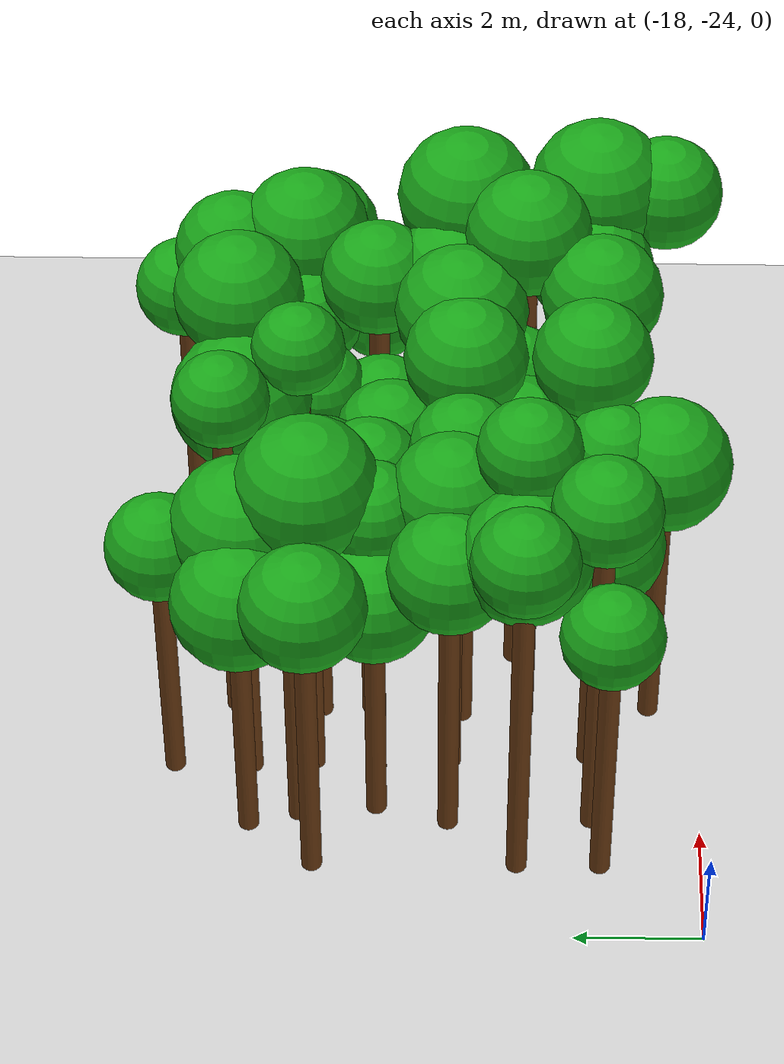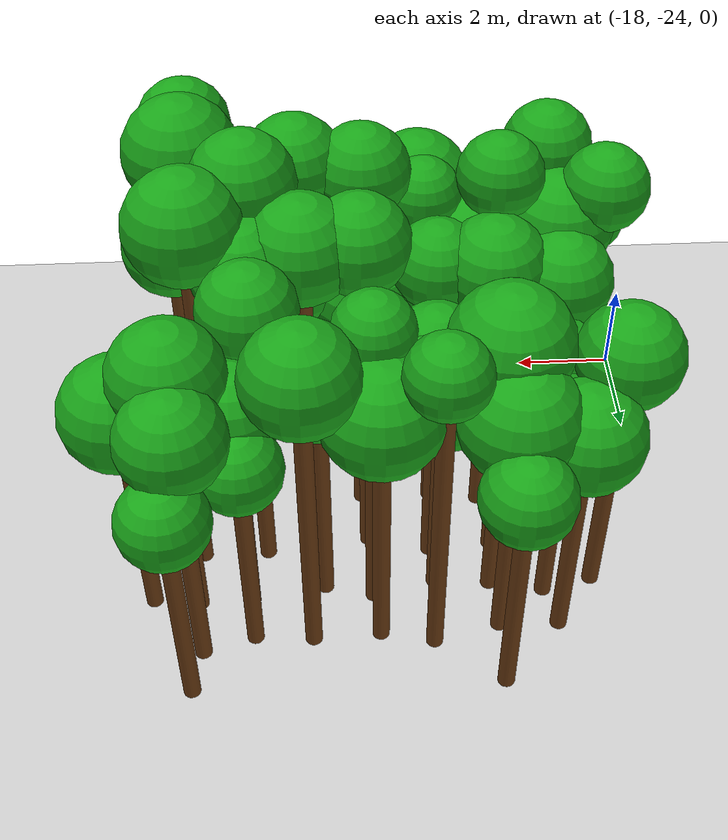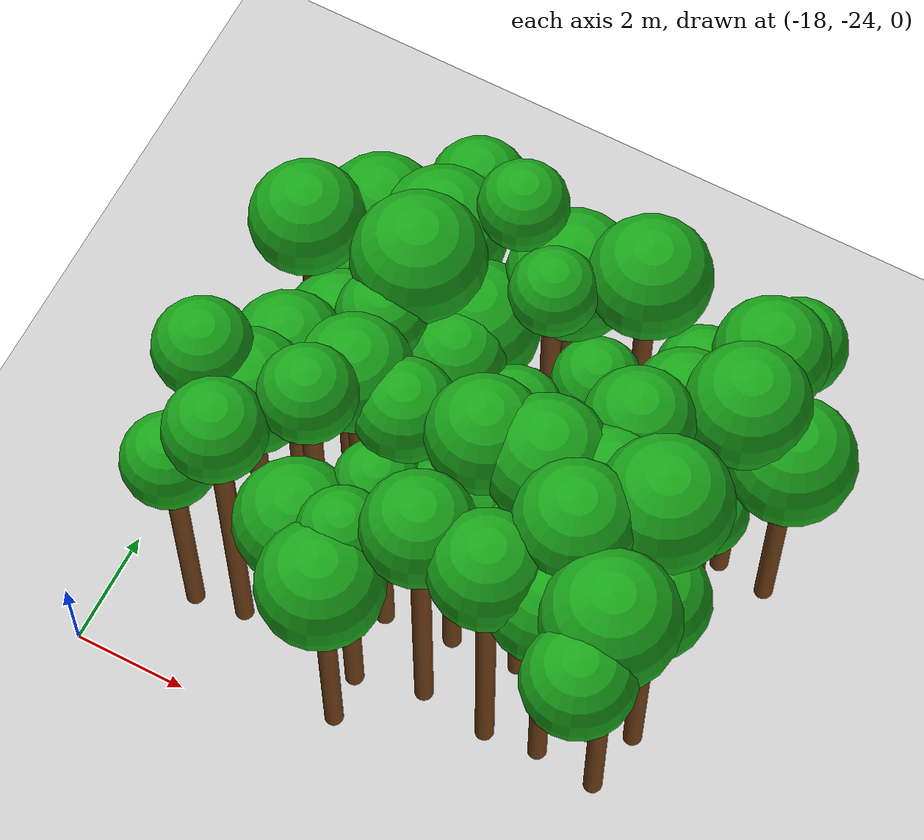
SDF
<sdf version="1.6">
 <world name="forest_world">
  <include><uri>model://sun</uri></include>
  <include><uri>model://ground_plane</uri></include>
  <model name="tree_667_trunk">
   <static>true</static>
   <pose>-16.63 -22.43 2.53 0 0 0</pose>
   <link name="link">
    <collision name="collision">
     <geometry><cylinder><radius>0.16</radius><length>5.06</length></cylinder></geometry>
    </collision>
    <visual name="visual">
     <geometry><cylinder><radius>0.16</radius><length>5.06</length></cylinder></geometry>
     <material><ambient>0.35 0.20 0.05 1</ambient><diffuse>0.45 0.25 0.08 1</diffuse></material>
    </visual>
   </link>
  </model>
  <model name="tree_667_leaf">
   <static>true</static>
   <pose>-16.63 -22.43 5.53 0 0 0</pose>
   <link name="link">
    <collision name="collision"><geometry><sphere><radius>0.78</radius></sphere></geometry></collision>
    <visual name="visual">
     <geometry><sphere><radius>0.78</radius></sphere></geometry>
     <material><ambient>0.05 0.45 0.05 1</ambient><diffuse>0.10 0.65 0.10 1</diffuse></material>
    </visual>
   </link>
  </model>
  <model name="tree_668_trunk">
   <static>true</static>
   <pose>-16.63 -21.14 3.33 0 0 0</pose>
   <link name="link">
    <collision name="collision">
     <geometry><cylinder><radius>0.16</radius><length>6.66</length></cylinder></geometry>
    </collision>
    <visual name="visual">
     <geometry><cylinder><radius>0.16</radius><length>6.66</length></cylinder></geometry>
     <material><ambient>0.35 0.20 0.05 1</ambient><diffuse>0.45 0.25 0.08 1</diffuse></material>
    </visual>
   </link>
  </model>
  <model name="tree_668_leaf">
   <static>true</static>
   <pose>-16.63 -21.14 7.14 0 0 0</pose>
   <link name="link">
    <collision name="collision"><geometry><sphere><radius>0.80</radius></sphere></geometry></collision>
    <visual name="visual">
     <geometry><sphere><radius>0.80</radius></sphere></geometry>
     <material><ambient>0.05 0.45 0.05 1</ambient><diffuse>0.10 0.65 0.10 1</diffuse></material>
    </visual>
   </link>
  </model>
  <model name="tree_671_trunk">
   <static>true</static>
   <pose>-16.64 -17.97 2.77 0 0 0</pose>
   <link name="link">
    <collision name="collision">
     <geometry><cylinder><radius>0.16</radius><length>5.54</length></cylinder></geometry>
    </collision>
    <visual name="visual">
     <geometry><cylinder><radius>0.16</radius><length>5.54</length></cylinder></geometry>
     <material><ambient>0.35 0.20 0.05 1</ambient><diffuse>0.45 0.25 0.08 1</diffuse></material>
    </visual>
   </link>
  </model>
  <model name="tree_671_leaf">
   <static>true</static>
   <pose>-16.64 -17.97 6.10 0 0 0</pose>
   <link name="link">
    <collision name="collision"><geometry><sphere><radius>0.94</radius></sphere></geometry></collision>
    <visual name="visual">
     <geometry><sphere><radius>0.94</radius></sphere></geometry>
     <material><ambient>0.05 0.45 0.05 1</ambient><diffuse>0.10 0.65 0.10 1</diffuse></material>
    </visual>
   </link>
  </model>
  <model name="tree_722_trunk">
   <static>true</static>
   <pose>-15.75 -22.30 3.39 0 0 0</pose>
   <link name="link">
    <collision name="collision">
     <geometry><cylinder><radius>0.16</radius><length>6.77</length></cylinder></geometry>
    </collision>
    <visual name="visual">
     <geometry><cylinder><radius>0.16</radius><length>6.77</length></cylinder></geometry>
     <material><ambient>0.35 0.20 0.05 1</ambient><diffuse>0.45 0.25 0.08 1</diffuse></material>
    </visual>
   </link>
  </model>
  <model name="tree_722_leaf">
   <static>true</static>
   <pose>-15.75 -22.30 7.26 0 0 0</pose>
   <link name="link">
    <collision name="collision"><geometry><sphere><radius>0.82</radius></sphere></geometry></collision>
    <visual name="visual">
     <geometry><sphere><radius>0.82</radius></sphere></geometry>
     <material><ambient>0.05 0.45 0.05 1</ambient><diffuse>0.10 0.65 0.10 1</diffuse></material>
    </visual>
   </link>
  </model>
  <model name="tree_723_trunk">
   <static>true</static>
   <pose>-15.87 -21.16 2.89 0 0 0</pose>
   <link name="link">
    <collision name="collision">
     <geometry><cylinder><radius>0.16</radius><length>5.79</length></cylinder></geometry>
    </collision>
    <visual name="visual">
     <geometry><cylinder><radius>0.16</radius><length>5.79</length></cylinder></geometry>
     <material><ambient>0.35 0.20 0.05 1</ambient><diffuse>0.45 0.25 0.08 1</diffuse></material>
    </visual>
   </link>
  </model>
  <model name="tree_723_leaf">
   <static>true</static>
   <pose>-15.87 -21.16 6.39 0 0 0</pose>
   <link name="link">
    <collision name="collision"><geometry><sphere><radius>1.01</radius></sphere></geometry></collision>
    <visual name="visual">
     <geometry><sphere><radius>1.01</radius></sphere></geometry>
     <material><ambient>0.05 0.45 0.05 1</ambient><diffuse>0.10 0.65 0.10 1</diffuse></material>
    </visual>
   </link>
  </model>
  <model name="tree_724_trunk">
   <static>true</static>
   <pose>-15.81 -20.07 2.71 0 0 0</pose>
   <link name="link">
    <collision name="collision">
     <geometry><cylinder><radius>0.16</radius><length>5.42</length></cylinder></geometry>
    </collision>
    <visual name="visual">
     <geometry><cylinder><radius>0.16</radius><length>5.42</length></cylinder></geometry>
     <material><ambient>0.35 0.20 0.05 1</ambient><diffuse>0.45 0.25 0.08 1</diffuse></material>
    </visual>
   </link>
  </model>
  <model name="tree_724_leaf">
   <static>true</static>
   <pose>-15.81 -20.07 5.98 0 0 0</pose>
   <link name="link">
    <collision name="collision"><geometry><sphere><radius>0.93</radius></sphere></geometry></collision>
    <visual name="visual">
     <geometry><sphere><radius>0.93</radius></sphere></geometry>
     <material><ambient>0.05 0.45 0.05 1</ambient><diffuse>0.10 0.65 0.10 1</diffuse></material>
    </visual>
   </link>
  </model>
  <model name="tree_725_trunk">
   <static>true</static>
   <pose>-15.53 -18.95 2.22 0 0 0</pose>
   <link name="link">
    <collision name="collision">
     <geometry><cylinder><radius>0.16</radius><length>4.43</length></cylinder></geometry>
    </collision>
    <visual name="visual">
     <geometry><cylinder><radius>0.16</radius><length>4.43</length></cylinder></geometry>
     <material><ambient>0.35 0.20 0.05 1</ambient><diffuse>0.45 0.25 0.08 1</diffuse></material>
    </visual>
   </link>
  </model>
  <model name="tree_725_leaf">
   <static>true</static>
   <pose>-15.53 -18.95 5.00 0 0 0</pose>
   <link name="link">
    <collision name="collision"><geometry><sphere><radius>0.95</radius></sphere></geometry></collision>
    <visual name="visual">
     <geometry><sphere><radius>0.95</radius></sphere></geometry>
     <material><ambient>0.05 0.45 0.05 1</ambient><diffuse>0.10 0.65 0.10 1</diffuse></material>
    </visual>
   </link>
  </model>
  <model name="tree_726_trunk">
   <static>true</static>
   <pose>-15.67 -17.74 2.21 0 0 0</pose>
   <link name="link">
    <collision name="collision">
     <geometry><cylinder><radius>0.16</radius><length>4.41</length></cylinder></geometry>
    </collision>
    <visual name="visual">
     <geometry><cylinder><radius>0.16</radius><length>4.41</length></cylinder></geometry>
     <material><ambient>0.35 0.20 0.05 1</ambient><diffuse>0.45 0.25 0.08 1</diffuse></material>
    </visual>
   </link>
  </model>
  <model name="tree_726_leaf">
   <static>true</static>
   <pose>-15.67 -17.74 4.88 0 0 0</pose>
   <link name="link">
    <collision name="collision"><geometry><sphere><radius>0.78</radius></sphere></geometry></collision>
    <visual name="visual">
     <geometry><sphere><radius>0.78</radius></sphere></geometry>
     <material><ambient>0.05 0.45 0.05 1</ambient><diffuse>0.10 0.65 0.10 1</diffuse></material>
    </visual>
   </link>
  </model>
  <model name="tree_727_trunk">
   <static>true</static>
   <pose>-15.87 -16.96 2.33 0 0 0</pose>
   <link name="link">
    <collision name="collision">
     <geometry><cylinder><radius>0.16</radius><length>4.67</length></cylinder></geometry>
    </collision>
    <visual name="visual">
     <geometry><cylinder><radius>0.16</radius><length>4.67</length></cylinder></geometry>
     <material><ambient>0.35 0.20 0.05 1</ambient><diffuse>0.45 0.25 0.08 1</diffuse></material>
    </visual>
   </link>
  </model>
  <model name="tree_727_leaf">
   <static>true</static>
   <pose>-15.87 -16.96 5.27 0 0 0</pose>
   <link name="link">
    <collision name="collision"><geometry><sphere><radius>1.00</radius></sphere></geometry></collision>
    <visual name="visual">
     <geometry><sphere><radius>1.00</radius></sphere></geometry>
     <material><ambient>0.05 0.45 0.05 1</ambient><diffuse>0.10 0.65 0.10 1</diffuse></material>
    </visual>
   </link>
  </model>
  <model name="tree_777_trunk">
   <static>true</static>
   <pose>-14.49 -22.26 2.25 0 0 0</pose>
   <link name="link">
    <collision name="collision">
     <geometry><cylinder><radius>0.16</radius><length>4.50</length></cylinder></geometry>
    </collision>
    <visual name="visual">
     <geometry><cylinder><radius>0.16</radius><length>4.50</length></cylinder></geometry>
     <material><ambient>0.35 0.20 0.05 1</ambient><diffuse>0.45 0.25 0.08 1</diffuse></material>
    </visual>
   </link>
  </model>
  <model name="tree_777_leaf">
   <static>true</static>
   <pose>-14.49 -22.26 5.11 0 0 0</pose>
   <link name="link">
    <collision name="collision"><geometry><sphere><radius>1.02</radius></sphere></geometry></collision>
    <visual name="visual">
     <geometry><sphere><radius>1.02</radius></sphere></geometry>
     <material><ambient>0.05 0.45 0.05 1</ambient><diffuse>0.10 0.65 0.10 1</diffuse></material>
    </visual>
   </link>
  </model>
  <model name="tree_778_trunk">
   <static>true</static>
   <pose>-14.77 -21.20 3.49 0 0 0</pose>
   <link name="link">
    <collision name="collision">
     <geometry><cylinder><radius>0.16</radius><length>6.97</length></cylinder></geometry>
    </collision>
    <visual name="visual">
     <geometry><cylinder><radius>0.16</radius><length>6.97</length></cylinder></geometry>
     <material><ambient>0.35 0.20 0.05 1</ambient><diffuse>0.45 0.25 0.08 1</diffuse></material>
    </visual>
   </link>
  </model>
  <model name="tree_778_leaf">
   <static>true</static>
   <pose>-14.77 -21.20 7.44 0 0 0</pose>
   <link name="link">
    <collision name="collision"><geometry><sphere><radius>0.78</radius></sphere></geometry></collision>
    <visual name="visual">
     <geometry><sphere><radius>0.78</radius></sphere></geometry>
     <material><ambient>0.05 0.45 0.05 1</ambient><diffuse>0.10 0.65 0.10 1</diffuse></material>
    </visual>
   </link>
  </model>
  <model name="tree_779_trunk">
   <static>true</static>
   <pose>-14.62 -20.10 2.87 0 0 0</pose>
   <link name="link">
    <collision name="collision">
     <geometry><cylinder><radius>0.16</radius><length>5.73</length></cylinder></geometry>
    </collision>
    <visual name="visual">
     <geometry><cylinder><radius>0.16</radius><length>5.73</length></cylinder></geometry>
     <material><ambient>0.35 0.20 0.05 1</ambient><diffuse>0.45 0.25 0.08 1</diffuse></material>
    </visual>
   </link>
  </model>
  <model name="tree_779_leaf">
   <static>true</static>
   <pose>-14.62 -20.10 6.31 0 0 0</pose>
   <link name="link">
    <collision name="collision"><geometry><sphere><radius>0.95</radius></sphere></geometry></collision>
    <visual name="visual">
     <geometry><sphere><radius>0.95</radius></sphere></geometry>
     <material><ambient>0.05 0.45 0.05 1</ambient><diffuse>0.10 0.65 0.10 1</diffuse></material>
    </visual>
   </link>
  </model>
  <model name="tree_780_trunk">
   <static>true</static>
   <pose>-14.75 -18.93 2.80 0 0 0</pose>
   <link name="link">
    <collision name="collision">
     <geometry><cylinder><radius>0.16</radius><length>5.60</length></cylinder></geometry>
    </collision>
    <visual name="visual">
     <geometry><cylinder><radius>0.16</radius><length>5.60</length></cylinder></geometry>
     <material><ambient>0.35 0.20 0.05 1</ambient><diffuse>0.45 0.25 0.08 1</diffuse></material>
    </visual>
   </link>
  </model>
  <model name="tree_780_leaf">
   <static>true</static>
   <pose>-14.75 -18.93 6.07 0 0 0</pose>
   <link name="link">
    <collision name="collision"><geometry><sphere><radius>0.77</radius></sphere></geometry></collision>
    <visual name="visual">
     <geometry><sphere><radius>0.77</radius></sphere></geometry>
     <material><ambient>0.05 0.45 0.05 1</ambient><diffuse>0.10 0.65 0.10 1</diffuse></material>
    </visual>
   </link>
  </model>
  <model name="tree_781_trunk">
   <static>true</static>
   <pose>-14.64 -17.96 2.90 0 0 0</pose>
   <link name="link">
    <collision name="collision">
     <geometry><cylinder><radius>0.16</radius><length>5.81</length></cylinder></geometry>
    </collision>
    <visual name="visual">
     <geometry><cylinder><radius>0.16</radius><length>5.81</length></cylinder></geometry>
     <material><ambient>0.35 0.20 0.05 1</ambient><diffuse>0.45 0.25 0.08 1</diffuse></material>
    </visual>
   </link>
  </model>
  <model name="tree_781_leaf">
   <static>true</static>
   <pose>-14.64 -17.96 6.46 0 0 0</pose>
   <link name="link">
    <collision name="collision"><geometry><sphere><radius>1.09</radius></sphere></geometry></collision>
    <visual name="visual">
     <geometry><sphere><radius>1.09</radius></sphere></geometry>
     <material><ambient>0.05 0.45 0.05 1</ambient><diffuse>0.10 0.65 0.10 1</diffuse></material>
    </visual>
   </link>
  </model>
  <model name="tree_782_trunk">
   <static>true</static>
   <pose>-14.73 -16.98 2.53 0 0 0</pose>
   <link name="link">
    <collision name="collision">
     <geometry><cylinder><radius>0.16</radius><length>5.06</length></cylinder></geometry>
    </collision>
    <visual name="visual">
     <geometry><cylinder><radius>0.16</radius><length>5.06</length></cylinder></geometry>
     <material><ambient>0.35 0.20 0.05 1</ambient><diffuse>0.45 0.25 0.08 1</diffuse></material>
    </visual>
   </link>
  </model>
  <model name="tree_782_leaf">
   <static>true</static>
   <pose>-14.73 -16.98 5.70 0 0 0</pose>
   <link name="link">
    <collision name="collision"><geometry><sphere><radius>1.07</radius></sphere></geometry></collision>
    <visual name="visual">
     <geometry><sphere><radius>1.07</radius></sphere></geometry>
     <material><ambient>0.05 0.45 0.05 1</ambient><diffuse>0.10 0.65 0.10 1</diffuse></material>
    </visual>
   </link>
  </model>
  <model name="tree_783_trunk">
   <static>true</static>
   <pose>-14.73 -15.75 2.36 0 0 0</pose>
   <link name="link">
    <collision name="collision">
     <geometry><cylinder><radius>0.16</radius><length>4.72</length></cylinder></geometry>
    </collision>
    <visual name="visual">
     <geometry><cylinder><radius>0.16</radius><length>4.72</length></cylinder></geometry>
     <material><ambient>0.35 0.20 0.05 1</ambient><diffuse>0.45 0.25 0.08 1</diffuse></material>
    </visual>
   </link>
  </model>
  <model name="tree_783_leaf">
   <static>true</static>
   <pose>-14.73 -15.75 5.21 0 0 0</pose>
   <link name="link">
    <collision name="collision"><geometry><sphere><radius>0.82</radius></sphere></geometry></collision>
    <visual name="visual">
     <geometry><sphere><radius>0.82</radius></sphere></geometry>
     <material><ambient>0.05 0.45 0.05 1</ambient><diffuse>0.10 0.65 0.10 1</diffuse></material>
    </visual>
   </link>
  </model>
  <model name="tree_831_trunk">
   <static>true</static>
   <pose>-13.50 -23.25 2.60 0 0 0</pose>
   <link name="link">
    <collision name="collision">
     <geometry><cylinder><radius>0.16</radius><length>5.20</length></cylinder></geometry>
    </collision>
    <visual name="visual">
     <geometry><cylinder><radius>0.16</radius><length>5.20</length></cylinder></geometry>
     <material><ambient>0.35 0.20 0.05 1</ambient><diffuse>0.45 0.25 0.08 1</diffuse></material>
    </visual>
   </link>
  </model>
  <model name="tree_831_leaf">
   <static>true</static>
   <pose>-13.50 -23.25 5.81 0 0 0</pose>
   <link name="link">
    <collision name="collision"><geometry><sphere><radius>1.02</radius></sphere></geometry></collision>
    <visual name="visual">
     <geometry><sphere><radius>1.02</radius></sphere></geometry>
     <material><ambient>0.05 0.45 0.05 1</ambient><diffuse>0.10 0.65 0.10 1</diffuse></material>
    </visual>
   </link>
  </model>
  <model name="tree_832_trunk">
   <static>true</static>
   <pose>-13.54 -22.46 2.84 0 0 0</pose>
   <link name="link">
    <collision name="collision">
     <geometry><cylinder><radius>0.16</radius><length>5.68</length></cylinder></geometry>
    </collision>
    <visual name="visual">
     <geometry><cylinder><radius>0.16</radius><length>5.68</length></cylinder></geometry>
     <material><ambient>0.35 0.20 0.05 1</ambient><diffuse>0.45 0.25 0.08 1</diffuse></material>
    </visual>
   </link>
  </model>
  <model name="tree_832_leaf">
   <static>true</static>
   <pose>-13.54 -22.46 6.11 0 0 0</pose>
   <link name="link">
    <collision name="collision"><geometry><sphere><radius>0.73</radius></sphere></geometry></collision>
    <visual name="visual">
     <geometry><sphere><radius>0.73</radius></sphere></geometry>
     <material><ambient>0.05 0.45 0.05 1</ambient><diffuse>0.10 0.65 0.10 1</diffuse></material>
    </visual>
   </link>
  </model>
  <model name="tree_833_trunk">
   <static>true</static>
   <pose>-13.61 -21.25 2.51 0 0 0</pose>
   <link name="link">
    <collision name="collision">
     <geometry><cylinder><radius>0.16</radius><length>5.02</length></cylinder></geometry>
    </collision>
    <visual name="visual">
     <geometry><cylinder><radius>0.16</radius><length>5.02</length></cylinder></geometry>
     <material><ambient>0.35 0.20 0.05 1</ambient><diffuse>0.45 0.25 0.08 1</diffuse></material>
    </visual>
   </link>
  </model>
  <model name="tree_833_leaf">
   <static>true</static>
   <pose>-13.61 -21.25 5.45 0 0 0</pose>
   <link name="link">
    <collision name="collision"><geometry><sphere><radius>0.72</radius></sphere></geometry></collision>
    <visual name="visual">
     <geometry><sphere><radius>0.72</radius></sphere></geometry>
     <material><ambient>0.05 0.45 0.05 1</ambient><diffuse>0.10 0.65 0.10 1</diffuse></material>
    </visual>
   </link>
  </model>
  <model name="tree_834_trunk">
   <static>true</static>
   <pose>-13.64 -20.27 2.87 0 0 0</pose>
   <link name="link">
    <collision name="collision">
     <geometry><cylinder><radius>0.16</radius><length>5.75</length></cylinder></geometry>
    </collision>
    <visual name="visual">
     <geometry><cylinder><radius>0.16</radius><length>5.75</length></cylinder></geometry>
     <material><ambient>0.35 0.20 0.05 1</ambient><diffuse>0.45 0.25 0.08 1</diffuse></material>
    </visual>
   </link>
  </model>
  <model name="tree_834_leaf">
   <static>true</static>
   <pose>-13.64 -20.27 6.25 0 0 0</pose>
   <link name="link">
    <collision name="collision"><geometry><sphere><radius>0.84</radius></sphere></geometry></collision>
    <visual name="visual">
     <geometry><sphere><radius>0.84</radius></sphere></geometry>
     <material><ambient>0.05 0.45 0.05 1</ambient><diffuse>0.10 0.65 0.10 1</diffuse></material>
    </visual>
   </link>
  </model>
  <model name="tree_835_trunk">
   <static>true</static>
   <pose>-13.53 -18.84 2.55 0 0 0</pose>
   <link name="link">
    <collision name="collision">
     <geometry><cylinder><radius>0.16</radius><length>5.10</length></cylinder></geometry>
    </collision>
    <visual name="visual">
     <geometry><cylinder><radius>0.16</radius><length>5.10</length></cylinder></geometry>
     <material><ambient>0.35 0.20 0.05 1</ambient><diffuse>0.45 0.25 0.08 1</diffuse></material>
    </visual>
   </link>
  </model>
  <model name="tree_835_leaf">
   <static>true</static>
   <pose>-13.53 -18.84 5.60 0 0 0</pose>
   <link name="link">
    <collision name="collision"><geometry><sphere><radius>0.83</radius></sphere></geometry></collision>
    <visual name="visual">
     <geometry><sphere><radius>0.83</radius></sphere></geometry>
     <material><ambient>0.05 0.45 0.05 1</ambient><diffuse>0.10 0.65 0.10 1</diffuse></material>
    </visual>
   </link>
  </model>
  <model name="tree_836_trunk">
   <static>true</static>
   <pose>-13.58 -18.05 2.36 0 0 0</pose>
   <link name="link">
    <collision name="collision">
     <geometry><cylinder><radius>0.16</radius><length>4.72</length></cylinder></geometry>
    </collision>
    <visual name="visual">
     <geometry><cylinder><radius>0.16</radius><length>4.72</length></cylinder></geometry>
     <material><ambient>0.35 0.20 0.05 1</ambient><diffuse>0.45 0.25 0.08 1</diffuse></material>
    </visual>
   </link>
  </model>
  <model name="tree_836_leaf">
   <static>true</static>
   <pose>-13.58 -18.05 5.36 0 0 0</pose>
   <link name="link">
    <collision name="collision"><geometry><sphere><radius>1.06</radius></sphere></geometry></collision>
    <visual name="visual">
     <geometry><sphere><radius>1.06</radius></sphere></geometry>
     <material><ambient>0.05 0.45 0.05 1</ambient><diffuse>0.10 0.65 0.10 1</diffuse></material>
    </visual>
   </link>
  </model>
  <model name="tree_837_trunk">
   <static>true</static>
   <pose>-13.48 -16.67 3.32 0 0 0</pose>
   <link name="link">
    <collision name="collision">
     <geometry><cylinder><radius>0.16</radius><length>6.64</length></cylinder></geometry>
    </collision>
    <visual name="visual">
     <geometry><cylinder><radius>0.16</radius><length>6.64</length></cylinder></geometry>
     <material><ambient>0.35 0.20 0.05 1</ambient><diffuse>0.45 0.25 0.08 1</diffuse></material>
    </visual>
   </link>
  </model>
  <model name="tree_837_leaf">
   <static>true</static>
   <pose>-13.48 -16.67 7.08 0 0 0</pose>
   <link name="link">
    <collision name="collision"><geometry><sphere><radius>0.73</radius></sphere></geometry></collision>
    <visual name="visual">
     <geometry><sphere><radius>0.73</radius></sphere></geometry>
     <material><ambient>0.05 0.45 0.05 1</ambient><diffuse>0.10 0.65 0.10 1</diffuse></material>
    </visual>
   </link>
  </model>
  <model name="tree_887_trunk">
   <static>true</static>
   <pose>-12.38 -22.16 3.18 0 0 0</pose>
   <link name="link">
    <collision name="collision">
     <geometry><cylinder><radius>0.16</radius><length>6.35</length></cylinder></geometry>
    </collision>
    <visual name="visual">
     <geometry><cylinder><radius>0.16</radius><length>6.35</length></cylinder></geometry>
     <material><ambient>0.35 0.20 0.05 1</ambient><diffuse>0.45 0.25 0.08 1</diffuse></material>
    </visual>
   </link>
  </model>
  <model name="tree_887_leaf">
   <static>true</static>
   <pose>-12.38 -22.16 6.90 0 0 0</pose>
   <link name="link">
    <collision name="collision"><geometry><sphere><radius>0.91</radius></sphere></geometry></collision>
    <visual name="visual">
     <geometry><sphere><radius>0.91</radius></sphere></geometry>
     <material><ambient>0.05 0.45 0.05 1</ambient><diffuse>0.10 0.65 0.10 1</diffuse></material>
    </visual>
   </link>
  </model>
  <model name="tree_888_trunk">
   <static>true</static>
   <pose>-12.41 -21.10 2.17 0 0 0</pose>
   <link name="link">
    <collision name="collision">
     <geometry><cylinder><radius>0.16</radius><length>4.35</length></cylinder></geometry>
    </collision>
    <visual name="visual">
     <geometry><cylinder><radius>0.16</radius><length>4.35</length></cylinder></geometry>
     <material><ambient>0.35 0.20 0.05 1</ambient><diffuse>0.45 0.25 0.08 1</diffuse></material>
    </visual>
   </link>
  </model>
  <model name="tree_888_leaf">
   <static>true</static>
   <pose>-12.41 -21.10 5.00 0 0 0</pose>
   <link name="link">
    <collision name="collision"><geometry><sphere><radius>1.10</radius></sphere></geometry></collision>
    <visual name="visual">
     <geometry><sphere><radius>1.10</radius></sphere></geometry>
     <material><ambient>0.05 0.45 0.05 1</ambient><diffuse>0.10 0.65 0.10 1</diffuse></material>
    </visual>
   </link>
  </model>
  <model name="tree_889_trunk">
   <static>true</static>
   <pose>-12.26 -20.27 3.10 0 0 0</pose>
   <link name="link">
    <collision name="collision">
     <geometry><cylinder><radius>0.16</radius><length>6.20</length></cylinder></geometry>
    </collision>
    <visual name="visual">
     <geometry><cylinder><radius>0.16</radius><length>6.20</length></cylinder></geometry>
     <material><ambient>0.35 0.20 0.05 1</ambient><diffuse>0.45 0.25 0.08 1</diffuse></material>
    </visual>
   </link>
  </model>
  <model name="tree_889_leaf">
   <static>true</static>
   <pose>-12.26 -20.27 6.76 0 0 0</pose>
   <link name="link">
    <collision name="collision"><geometry><sphere><radius>0.94</radius></sphere></geometry></collision>
    <visual name="visual">
     <geometry><sphere><radius>0.94</radius></sphere></geometry>
     <material><ambient>0.05 0.45 0.05 1</ambient><diffuse>0.10 0.65 0.10 1</diffuse></material>
    </visual>
   </link>
  </model>
  <model name="tree_890_trunk">
   <static>true</static>
   <pose>-12.34 -19.15 2.31 0 0 0</pose>
   <link name="link">
    <collision name="collision">
     <geometry><cylinder><radius>0.16</radius><length>4.62</length></cylinder></geometry>
    </collision>
    <visual name="visual">
     <geometry><cylinder><radius>0.16</radius><length>4.62</length></cylinder></geometry>
     <material><ambient>0.35 0.20 0.05 1</ambient><diffuse>0.45 0.25 0.08 1</diffuse></material>
    </visual>
   </link>
  </model>
  <model name="tree_890_leaf">
   <static>true</static>
   <pose>-12.34 -19.15 5.14 0 0 0</pose>
   <link name="link">
    <collision name="collision"><geometry><sphere><radius>0.86</radius></sphere></geometry></collision>
    <visual name="visual">
     <geometry><sphere><radius>0.86</radius></sphere></geometry>
     <material><ambient>0.05 0.45 0.05 1</ambient><diffuse>0.10 0.65 0.10 1</diffuse></material>
    </visual>
   </link>
  </model>
  <model name="tree_891_trunk">
   <static>true</static>
   <pose>-12.39 -17.77 3.31 0 0 0</pose>
   <link name="link">
    <collision name="collision">
     <geometry><cylinder><radius>0.16</radius><length>6.61</length></cylinder></geometry>
    </collision>
    <visual name="visual">
     <geometry><cylinder><radius>0.16</radius><length>6.61</length></cylinder></geometry>
     <material><ambient>0.35 0.20 0.05 1</ambient><diffuse>0.45 0.25 0.08 1</diffuse></material>
    </visual>
   </link>
  </model>
  <model name="tree_891_leaf">
   <static>true</static>
   <pose>-12.39 -17.77 7.04 0 0 0</pose>
   <link name="link">
    <collision name="collision"><geometry><sphere><radius>0.71</radius></sphere></geometry></collision>
    <visual name="visual">
     <geometry><sphere><radius>0.71</radius></sphere></geometry>
     <material><ambient>0.05 0.45 0.05 1</ambient><diffuse>0.10 0.65 0.10 1</diffuse></material>
    </visual>
   </link>
  </model>
  <model name="tree_892_trunk">
   <static>true</static>
   <pose>-12.48 -16.89 2.70 0 0 0</pose>
   <link name="link">
    <collision name="collision">
     <geometry><cylinder><radius>0.16</radius><length>5.40</length></cylinder></geometry>
    </collision>
    <visual name="visual">
     <geometry><cylinder><radius>0.16</radius><length>5.40</length></cylinder></geometry>
     <material><ambient>0.35 0.20 0.05 1</ambient><diffuse>0.45 0.25 0.08 1</diffuse></material>
    </visual>
   </link>
  </model>
  <model name="tree_892_leaf">
   <static>true</static>
   <pose>-12.48 -16.89 6.04 0 0 0</pose>
   <link name="link">
    <collision name="collision"><geometry><sphere><radius>1.07</radius></sphere></geometry></collision>
    <visual name="visual">
     <geometry><sphere><radius>1.07</radius></sphere></geometry>
     <material><ambient>0.05 0.45 0.05 1</ambient><diffuse>0.10 0.65 0.10 1</diffuse></material>
    </visual>
   </link>
  </model>
  <model name="tree_942_trunk">
   <static>true</static>
   <pose>-11.16 -22.31 3.22 0 0 0</pose>
   <link name="link">
    <collision name="collision">
     <geometry><cylinder><radius>0.16</radius><length>6.45</length></cylinder></geometry>
    </collision>
    <visual name="visual">
     <geometry><cylinder><radius>0.16</radius><length>6.45</length></cylinder></geometry>
     <material><ambient>0.35 0.20 0.05 1</ambient><diffuse>0.45 0.25 0.08 1</diffuse></material>
    </visual>
   </link>
  </model>
  <model name="tree_942_leaf">
   <static>true</static>
   <pose>-11.16 -22.31 7.01 0 0 0</pose>
   <link name="link">
    <collision name="collision"><geometry><sphere><radius>0.93</radius></sphere></geometry></collision>
    <visual name="visual">
     <geometry><sphere><radius>0.93</radius></sphere></geometry>
     <material><ambient>0.05 0.45 0.05 1</ambient><diffuse>0.10 0.65 0.10 1</diffuse></material>
    </visual>
   </link>
  </model>
  <model name="tree_943_trunk">
   <static>true</static>
   <pose>-11.22 -21.02 2.44 0 0 0</pose>
   <link name="link">
    <collision name="collision">
     <geometry><cylinder><radius>0.16</radius><length>4.88</length></cylinder></geometry>
    </collision>
    <visual name="visual">
     <geometry><cylinder><radius>0.16</radius><length>4.88</length></cylinder></geometry>
     <material><ambient>0.35 0.20 0.05 1</ambient><diffuse>0.45 0.25 0.08 1</diffuse></material>
    </visual>
   </link>
  </model>
  <model name="tree_943_leaf">
   <static>true</static>
   <pose>-11.22 -21.02 5.34 0 0 0</pose>
   <link name="link">
    <collision name="collision"><geometry><sphere><radius>0.77</radius></sphere></geometry></collision>
    <visual name="visual">
     <geometry><sphere><radius>0.77</radius></sphere></geometry>
     <material><ambient>0.05 0.45 0.05 1</ambient><diffuse>0.10 0.65 0.10 1</diffuse></material>
    </visual>
   </link>
  </model>
  <model name="tree_944_trunk">
   <static>true</static>
   <pose>-11.26 -20.20 3.06 0 0 0</pose>
   <link name="link">
    <collision name="collision">
     <geometry><cylinder><radius>0.16</radius><length>6.13</length></cylinder></geometry>
    </collision>
    <visual name="visual">
     <geometry><cylinder><radius>0.16</radius><length>6.13</length></cylinder></geometry>
     <material><ambient>0.35 0.20 0.05 1</ambient><diffuse>0.45 0.25 0.08 1</diffuse></material>
    </visual>
   </link>
  </model>
  <model name="tree_944_leaf">
   <static>true</static>
   <pose>-11.26 -20.20 6.74 0 0 0</pose>
   <link name="link">
    <collision name="collision"><geometry><sphere><radius>1.02</radius></sphere></geometry></collision>
    <visual name="visual">
     <geometry><sphere><radius>1.02</radius></sphere></geometry>
     <material><ambient>0.05 0.45 0.05 1</ambient><diffuse>0.10 0.65 0.10 1</diffuse></material>
    </visual>
   </link>
  </model>
  <model name="tree_945_trunk">
   <static>true</static>
   <pose>-11.43 -19.01 2.16 0 0 0</pose>
   <link name="link">
    <collision name="collision">
     <geometry><cylinder><radius>0.16</radius><length>4.31</length></cylinder></geometry>
    </collision>
    <visual name="visual">
     <geometry><cylinder><radius>0.16</radius><length>4.31</length></cylinder></geometry>
     <material><ambient>0.35 0.20 0.05 1</ambient><diffuse>0.45 0.25 0.08 1</diffuse></material>
    </visual>
   </link>
  </model>
  <model name="tree_945_leaf">
   <static>true</static>
   <pose>-11.43 -19.01 4.80 0 0 0</pose>
   <link name="link">
    <collision name="collision"><geometry><sphere><radius>0.82</radius></sphere></geometry></collision>
    <visual name="visual">
     <geometry><sphere><radius>0.82</radius></sphere></geometry>
     <material><ambient>0.05 0.45 0.05 1</ambient><diffuse>0.10 0.65 0.10 1</diffuse></material>
    </visual>
   </link>
  </model>
  <model name="tree_946_trunk">
   <static>true</static>
   <pose>-11.46 -18.02 2.40 0 0 0</pose>
   <link name="link">
    <collision name="collision">
     <geometry><cylinder><radius>0.16</radius><length>4.81</length></cylinder></geometry>
    </collision>
    <visual name="visual">
     <geometry><cylinder><radius>0.16</radius><length>4.81</length></cylinder></geometry>
     <material><ambient>0.35 0.20 0.05 1</ambient><diffuse>0.45 0.25 0.08 1</diffuse></material>
    </visual>
   </link>
  </model>
  <model name="tree_946_leaf">
   <static>true</static>
   <pose>-11.46 -18.02 5.24 0 0 0</pose>
   <link name="link">
    <collision name="collision"><geometry><sphere><radius>0.73</radius></sphere></geometry></collision>
    <visual name="visual">
     <geometry><sphere><radius>0.73</radius></sphere></geometry>
     <material><ambient>0.05 0.45 0.05 1</ambient><diffuse>0.10 0.65 0.10 1</diffuse></material>
    </visual>
   </link>
  </model>
  <model name="tree_947_trunk">
   <static>true</static>
   <pose>-11.21 -16.83 3.19 0 0 0</pose>
   <link name="link">
    <collision name="collision">
     <geometry><cylinder><radius>0.16</radius><length>6.38</length></cylinder></geometry>
    </collision>
    <visual name="visual">
     <geometry><cylinder><radius>0.16</radius><length>6.38</length></cylinder></geometry>
     <material><ambient>0.35 0.20 0.05 1</ambient><diffuse>0.45 0.25 0.08 1</diffuse></material>
    </visual>
   </link>
  </model>
  <model name="tree_947_leaf">
   <static>true</static>
   <pose>-11.21 -16.83 6.98 0 0 0</pose>
   <link name="link">
    <collision name="collision"><geometry><sphere><radius>0.99</radius></sphere></geometry></collision>
    <visual name="visual">
     <geometry><sphere><radius>0.99</radius></sphere></geometry>
     <material><ambient>0.05 0.45 0.05 1</ambient><diffuse>0.10 0.65 0.10 1</diffuse></material>
    </visual>
   </link>
  </model>
  <model name="tree_997_trunk">
   <static>true</static>
   <pose>-10.23 -22.20 3.01 0 0 0</pose>
   <link name="link">
    <collision name="collision">
     <geometry><cylinder><radius>0.16</radius><length>6.02</length></cylinder></geometry>
    </collision>
    <visual name="visual">
     <geometry><cylinder><radius>0.16</radius><length>6.02</length></cylinder></geometry>
     <material><ambient>0.35 0.20 0.05 1</ambient><diffuse>0.45 0.25 0.08 1</diffuse></material>
    </visual>
   </link>
  </model>
  <model name="tree_997_leaf">
   <static>true</static>
   <pose>-10.23 -22.20 6.59 0 0 0</pose>
   <link name="link">
    <collision name="collision"><geometry><sphere><radius>0.95</radius></sphere></geometry></collision>
    <visual name="visual">
     <geometry><sphere><radius>0.95</radius></sphere></geometry>
     <material><ambient>0.05 0.45 0.05 1</ambient><diffuse>0.10 0.65 0.10 1</diffuse></material>
    </visual>
   </link>
  </model>
  <model name="tree_998_trunk">
   <static>true</static>
   <pose>-10.28 -21.20 3.43 0 0 0</pose>
   <link name="link">
    <collision name="collision">
     <geometry><cylinder><radius>0.16</radius><length>6.85</length></cylinder></geometry>
    </collision>
    <visual name="visual">
     <geometry><cylinder><radius>0.16</radius><length>6.85</length></cylinder></geometry>
     <material><ambient>0.35 0.20 0.05 1</ambient><diffuse>0.45 0.25 0.08 1</diffuse></material>
    </visual>
   </link>
  </model>
  <model name="tree_998_leaf">
   <static>true</static>
   <pose>-10.28 -21.20 7.43 0 0 0</pose>
   <link name="link">
    <collision name="collision"><geometry><sphere><radius>0.97</radius></sphere></geometry></collision>
    <visual name="visual">
     <geometry><sphere><radius>0.97</radius></sphere></geometry>
     <material><ambient>0.05 0.45 0.05 1</ambient><diffuse>0.10 0.65 0.10 1</diffuse></material>
    </visual>
   </link>
  </model>
  <model name="tree_999_trunk">
   <static>true</static>
   <pose>-10.26 -20.04 2.95 0 0 0</pose>
   <link name="link">
    <collision name="collision">
     <geometry><cylinder><radius>0.16</radius><length>5.90</length></cylinder></geometry>
    </collision>
    <visual name="visual">
     <geometry><cylinder><radius>0.16</radius><length>5.90</length></cylinder></geometry>
     <material><ambient>0.35 0.20 0.05 1</ambient><diffuse>0.45 0.25 0.08 1</diffuse></material>
    </visual>
   </link>
  </model>
  <model name="tree_999_leaf">
   <static>true</static>
   <pose>-10.26 -20.04 6.49 0 0 0</pose>
   <link name="link">
    <collision name="collision"><geometry><sphere><radius>0.98</radius></sphere></geometry></collision>
    <visual name="visual">
     <geometry><sphere><radius>0.98</radius></sphere></geometry>
     <material><ambient>0.05 0.45 0.05 1</ambient><diffuse>0.10 0.65 0.10 1</diffuse></material>
    </visual>
   </link>
  </model>
  <model name="tree_1000_trunk">
   <static>true</static>
   <pose>-10.34 -18.92 2.99 0 0 0</pose>
   <link name="link">
    <collision name="collision">
     <geometry><cylinder><radius>0.16</radius><length>5.99</length></cylinder></geometry>
    </collision>
    <visual name="visual">
     <geometry><cylinder><radius>0.16</radius><length>5.99</length></cylinder></geometry>
     <material><ambient>0.35 0.20 0.05 1</ambient><diffuse>0.45 0.25 0.08 1</diffuse></material>
    </visual>
   </link>
  </model>
  <model name="tree_1000_leaf">
   <static>true</static>
   <pose>-10.34 -18.92 6.52 0 0 0</pose>
   <link name="link">
    <collision name="collision"><geometry><sphere><radius>0.89</radius></sphere></geometry></collision>
    <visual name="visual">
     <geometry><sphere><radius>0.89</radius></sphere></geometry>
     <material><ambient>0.05 0.45 0.05 1</ambient><diffuse>0.10 0.65 0.10 1</diffuse></material>
    </visual>
   </link>
  </model>
  <model name="tree_1001_trunk">
   <static>true</static>
   <pose>-10.04 -17.76 2.41 0 0 0</pose>
   <link name="link">
    <collision name="collision">
     <geometry><cylinder><radius>0.16</radius><length>4.82</length></cylinder></geometry>
    </collision>
    <visual name="visual">
     <geometry><cylinder><radius>0.16</radius><length>4.82</length></cylinder></geometry>
     <material><ambient>0.35 0.20 0.05 1</ambient><diffuse>0.45 0.25 0.08 1</diffuse></material>
    </visual>
   </link>
  </model>
  <model name="tree_1001_leaf">
   <static>true</static>
   <pose>-10.04 -17.76 5.36 0 0 0</pose>
   <link name="link">
    <collision name="collision"><geometry><sphere><radius>0.90</radius></sphere></geometry></collision>
    <visual name="visual">
     <geometry><sphere><radius>0.90</radius></sphere></geometry>
     <material><ambient>0.05 0.45 0.05 1</ambient><diffuse>0.10 0.65 0.10 1</diffuse></material>
    </visual>
   </link>
  </model>
  <model name="tree_1002_trunk">
   <static>true</static>
   <pose>-10.11 -16.92 2.18 0 0 0</pose>
   <link name="link">
    <collision name="collision">
     <geometry><cylinder><radius>0.16</radius><length>4.37</length></cylinder></geometry>
    </collision>
    <visual name="visual">
     <geometry><cylinder><radius>0.16</radius><length>4.37</length></cylinder></geometry>
     <material><ambient>0.35 0.20 0.05 1</ambient><diffuse>0.45 0.25 0.08 1</diffuse></material>
    </visual>
   </link>
  </model>
  <model name="tree_1002_leaf">
   <static>true</static>
   <pose>-10.11 -16.92 4.84 0 0 0</pose>
   <link name="link">
    <collision name="collision"><geometry><sphere><radius>0.79</radius></sphere></geometry></collision>
    <visual name="visual">
     <geometry><sphere><radius>0.79</radius></sphere></geometry>
     <material><ambient>0.05 0.45 0.05 1</ambient><diffuse>0.10 0.65 0.10 1</diffuse></material>
    </visual>
   </link>
  </model>
  <model name="tree_1051_leaf">
   <static>true</static>
   <pose>-9.15 -23.31 7.23 0 0 0</pose>
   <link name="link">
    <collision name="collision"><geometry><sphere><radius>0.88</radius></sphere></geometry></collision>
    <visual name="visual">
     <geometry><sphere><radius>0.88</radius></sphere></geometry>
     <material><ambient>0.05 0.45 0.05 1</ambient><diffuse>0.10 0.65 0.10 1</diffuse></material>
    </visual>
   </link>
  </model>
  <model name="tree_1052_trunk">
   <static>true</static>
   <pose>-9.15 -22.29 3.34 0 0 0</pose>
   <link name="link">
    <collision name="collision">
     <geometry><cylinder><radius>0.16</radius><length>6.69</length></cylinder></geometry>
    </collision>
    <visual name="visual">
     <geometry><cylinder><radius>0.16</radius><length>6.69</length></cylinder></geometry>
     <material><ambient>0.35 0.20 0.05 1</ambient><diffuse>0.45 0.25 0.08 1</diffuse></material>
    </visual>
   </link>
  </model>
  <model name="tree_1052_leaf">
   <static>true</static>
   <pose>-9.15 -22.29 7.33 0 0 0</pose>
   <link name="link">
    <collision name="collision"><geometry><sphere><radius>1.07</radius></sphere></geometry></collision>
    <visual name="visual">
     <geometry><sphere><radius>1.07</radius></sphere></geometry>
     <material><ambient>0.05 0.45 0.05 1</ambient><diffuse>0.10 0.65 0.10 1</diffuse></material>
    </visual>
   </link>
  </model>
  <model name="tree_1053_trunk">
   <static>true</static>
   <pose>-8.94 -21.24 2.74 0 0 0</pose>
   <link name="link">
    <collision name="collision">
     <geometry><cylinder><radius>0.16</radius><length>5.48</length></cylinder></geometry>
    </collision>
    <visual name="visual">
     <geometry><cylinder><radius>0.16</radius><length>5.48</length></cylinder></geometry>
     <material><ambient>0.35 0.20 0.05 1</ambient><diffuse>0.45 0.25 0.08 1</diffuse></material>
    </visual>
   </link>
  </model>
  <model name="tree_1053_leaf">
   <static>true</static>
   <pose>-8.94 -21.24 6.04 0 0 0</pose>
   <link name="link">
    <collision name="collision"><geometry><sphere><radius>0.93</radius></sphere></geometry></collision>
    <visual name="visual">
     <geometry><sphere><radius>0.93</radius></sphere></geometry>
     <material><ambient>0.05 0.45 0.05 1</ambient><diffuse>0.10 0.65 0.10 1</diffuse></material>
    </visual>
   </link>
  </model>
  <model name="tree_1054_trunk">
   <static>true</static>
   <pose>-9.28 -20.25 3.32 0 0 0</pose>
   <link name="link">
    <collision name="collision">
     <geometry><cylinder><radius>0.16</radius><length>6.64</length></cylinder></geometry>
    </collision>
    <visual name="visual">
     <geometry><cylinder><radius>0.16</radius><length>6.64</length></cylinder></geometry>
     <material><ambient>0.35 0.20 0.05 1</ambient><diffuse>0.45 0.25 0.08 1</diffuse></material>
    </visual>
   </link>
  </model>
  <model name="tree_1054_leaf">
   <static>true</static>
   <pose>-9.28 -20.25 7.27 0 0 0</pose>
   <link name="link">
    <collision name="collision"><geometry><sphere><radius>1.06</radius></sphere></geometry></collision>
    <visual name="visual">
     <geometry><sphere><radius>1.06</radius></sphere></geometry>
     <material><ambient>0.05 0.45 0.05 1</ambient><diffuse>0.10 0.65 0.10 1</diffuse></material>
    </visual>
   </link>
  </model>
  <model name="tree_1055_trunk">
   <static>true</static>
   <pose>-9.08 -18.90 2.01 0 0 0</pose>
   <link name="link">
    <collision name="collision">
     <geometry><cylinder><radius>0.16</radius><length>4.02</length></cylinder></geometry>
    </collision>
    <visual name="visual">
     <geometry><cylinder><radius>0.16</radius><length>4.02</length></cylinder></geometry>
     <material><ambient>0.35 0.20 0.05 1</ambient><diffuse>0.45 0.25 0.08 1</diffuse></material>
    </visual>
   </link>
  </model>
  <model name="tree_1055_leaf">
   <static>true</static>
   <pose>-9.08 -18.90 4.45 0 0 0</pose>
   <link name="link">
    <collision name="collision"><geometry><sphere><radius>0.71</radius></sphere></geometry></collision>
    <visual name="visual">
     <geometry><sphere><radius>0.71</radius></sphere></geometry>
     <material><ambient>0.05 0.45 0.05 1</ambient><diffuse>0.10 0.65 0.10 1</diffuse></material>
    </visual>
   </link>
  </model>
  <model name="tree_1056_trunk">
   <static>true</static>
   <pose>-9.04 -17.74 2.81 0 0 0</pose>
   <link name="link">
    <collision name="collision">
     <geometry><cylinder><radius>0.16</radius><length>5.62</length></cylinder></geometry>
    </collision>
    <visual name="visual">
     <geometry><cylinder><radius>0.16</radius><length>5.62</length></cylinder></geometry>
     <material><ambient>0.35 0.20 0.05 1</ambient><diffuse>0.45 0.25 0.08 1</diffuse></material>
    </visual>
   </link>
  </model>
  <model name="tree_1056_leaf">
   <static>true</static>
   <pose>-9.04 -17.74 6.22 0 0 0</pose>
   <link name="link">
    <collision name="collision"><geometry><sphere><radius>1.01</radius></sphere></geometry></collision>
    <visual name="visual">
     <geometry><sphere><radius>1.01</radius></sphere></geometry>
     <material><ambient>0.05 0.45 0.05 1</ambient><diffuse>0.10 0.65 0.10 1</diffuse></material>
    </visual>
   </link>
  </model>
  <model name="tree_1057_trunk">
   <static>true</static>
   <pose>-9.14 -16.63 2.67 0 0 0</pose>
   <link name="link">
    <collision name="collision">
     <geometry><cylinder><radius>0.16</radius><length>5.33</length></cylinder></geometry>
    </collision>
    <visual name="visual">
     <geometry><cylinder><radius>0.16</radius><length>5.33</length></cylinder></geometry>
     <material><ambient>0.35 0.20 0.05 1</ambient><diffuse>0.45 0.25 0.08 1</diffuse></material>
    </visual>
   </link>
  </model>
  <model name="tree_1057_leaf">
   <static>true</static>
   <pose>-9.14 -16.63 5.90 0 0 0</pose>
   <link name="link">
    <collision name="collision"><geometry><sphere><radius>0.94</radius></sphere></geometry></collision>
    <visual name="visual">
     <geometry><sphere><radius>0.94</radius></sphere></geometry>
     <material><ambient>0.05 0.45 0.05 1</ambient><diffuse>0.10 0.65 0.10 1</diffuse></material>
    </visual>
   </link>
  </model>
  <model name="tree_1058_trunk">
   <static>true</static>
   <pose>-8.96 -15.81 2.21 0 0 0</pose>
   <link name="link">
    <collision name="collision">
     <geometry><cylinder><radius>0.16</radius><length>4.42</length></cylinder></geometry>
    </collision>
    <visual name="visual">
     <geometry><cylinder><radius>0.16</radius><length>4.42</length></cylinder></geometry>
     <material><ambient>0.35 0.20 0.05 1</ambient><diffuse>0.45 0.25 0.08 1</diffuse></material>
    </visual>
   </link>
  </model>
  <model name="tree_1058_leaf">
   <static>true</static>
   <pose>-8.96 -15.81 4.90 0 0 0</pose>
   <link name="link">
    <collision name="collision"><geometry><sphere><radius>0.80</radius></sphere></geometry></collision>
    <visual name="visual">
     <geometry><sphere><radius>0.80</radius></sphere></geometry>
     <material><ambient>0.05 0.45 0.05 1</ambient><diffuse>0.10 0.65 0.10 1</diffuse></material>
    </visual>
   </link>
  </model>
  <model name="tree_1111_trunk">
   <static>true</static>
   <pose>-8.15 -17.85 2.34 0 0 0</pose>
   <link name="link">
    <collision name="collision">
     <geometry><cylinder><radius>0.16</radius><length>4.68</length></cylinder></geometry>
    </collision>
    <visual name="visual">
     <geometry><cylinder><radius>0.16</radius><length>4.68</length></cylinder></geometry>
     <material><ambient>0.35 0.20 0.05 1</ambient><diffuse>0.45 0.25 0.08 1</diffuse></material>
    </visual>
   </link>
  </model>
  <model name="tree_1111_leaf">
   <static>true</static>
   <pose>-8.15 -17.85 5.31 0 0 0</pose>
   <link name="link">
    <collision name="collision"><geometry><sphere><radius>1.04</radius></sphere></geometry></collision>
    <visual name="visual">
     <geometry><sphere><radius>1.04</radius></sphere></geometry>
     <material><ambient>0.05 0.45 0.05 1</ambient><diffuse>0.10 0.65 0.10 1</diffuse></material>
    </visual>
   </link>
  </model>
 </world>
</sdf>
